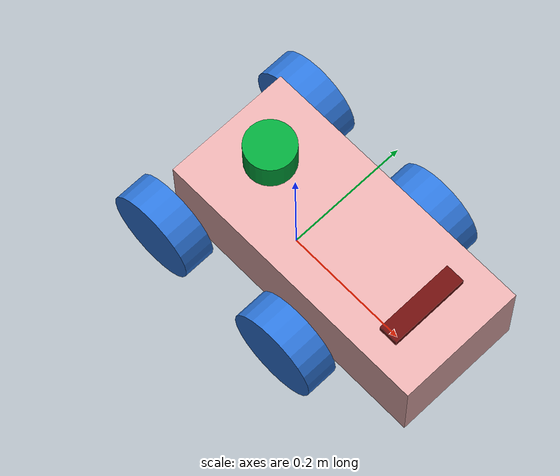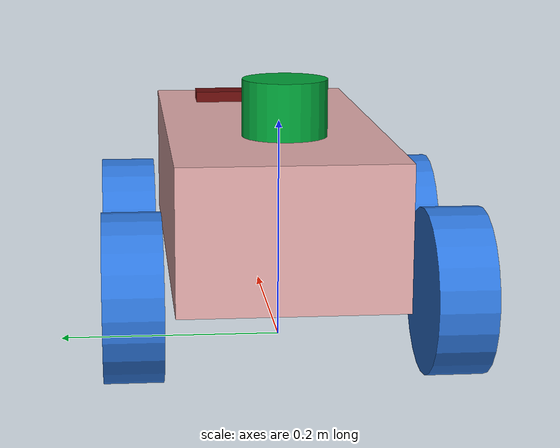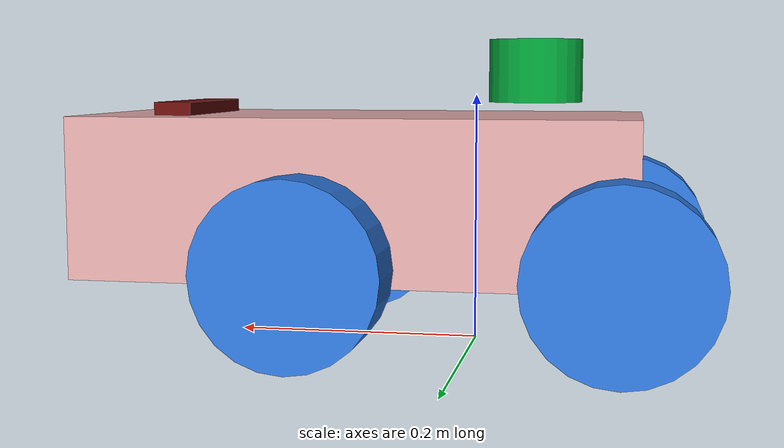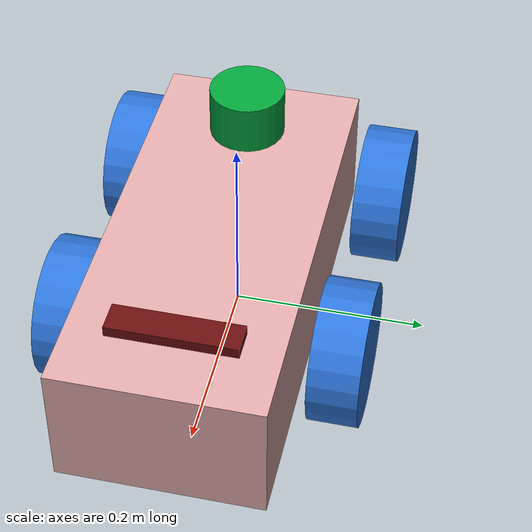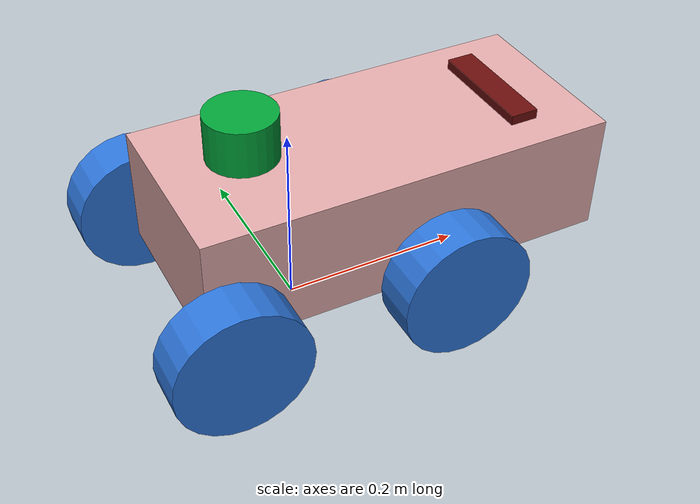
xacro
<?xml version="1.0"?>
<robot name="linorobot2_mecanum" xmlns:xacro="http://ros.org/wiki/xacro">
  <xacro:arg name="namespace" default="" />
  <xacro:include filename="$(find linorobot2_description)/urdf/mecanum_properties.urdf.xacro" />
  <xacro:include filename="$(find linorobot2_description)/urdf/mech/base.urdf.xacro" />
  <xacro:include filename="$(find linorobot2_description)/urdf/mech/mecanum_wheel.urdf.xacro" />
  <xacro:include filename="$(find linorobot2_description)/urdf/sensors/imu.urdf.xacro" />
  <xacro:include filename="$(find linorobot2_description)/urdf/sensors/generic_laser.urdf.xacro" />
  <xacro:include filename="$(find linorobot2_description)/urdf/sensors/depth_sensor.urdf.xacro" />
  <xacro:include filename="$(find linorobot2_description)/urdf/controllers/omni_drive.urdf.xacro" />

  <xacro:base
    length="${base_length}"
    width="${base_width}"
    height="${base_height}"
    mass="${base_mass}"
    wheel_radius="${wheel_radius}"
    wheel_pos_z="${wheel_pos_z}"
    mesh_file="${base_mesh_file}"
  />

  <xacro:mecanum_wheel
    side="front_left"
    radius="${wheel_radius}"
    width="${wheel_width}"
    pos_x="${wheel_pos_x}"
    pos_y="${wheel_pos_y}"
    pos_z="${wheel_pos_z}"
    mass="${wheel_mass}"
    mesh_file="${wheel_mesh_file}"
  />

  <xacro:mecanum_wheel
    side="front_right"
    radius="${wheel_radius}"
    width="${wheel_width}"
    pos_x="${wheel_pos_x}"
    pos_y="${-wheel_pos_y}"
    pos_z="${wheel_pos_z}"
    mass="${wheel_mass}"
    mesh_file="${wheel_mesh_file}"
  />
  <xacro:mecanum_wheel
    side="rear_left"
    radius="${wheel_radius}"
    width="${wheel_width}"
    pos_x="${-wheel_pos_x}"
    pos_y="${wheel_pos_y}"
    pos_z="${wheel_pos_z}"
    mass="${wheel_mass}"
    mesh_file="${wheel_mesh_file}"
  />

  <xacro:mecanum_wheel
    side="rear_right"
    radius="${wheel_radius}"
    width="${wheel_width}"
    pos_x="${-wheel_pos_x}"
    pos_y="${-wheel_pos_y}"
    pos_z="${wheel_pos_z}"
    mass="${wheel_mass}"
    mesh_file="${wheel_mesh_file}"
  />

  <xacro:imu/>

  <xacro:generic_laser>
    <xacro:insert_block name="laser_pose" />
  </xacro:generic_laser>

  <xacro:depth_sensor>
    <xacro:insert_block name="depth_sensor_pose" />
  </xacro:depth_sensor>

  <xacro:omni_drive_controller
    wheel_separation="${wheel_pos_y * 2}"
    wheel_base="${wheel_pos_x * 2}"
    wheel_radius="${wheel_radius}"
  />
</robot>

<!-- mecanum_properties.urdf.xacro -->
<robot xmlns:xacro="http://ros.org/wiki/xacro">
  <xacro:arg name="namespace" default="" />
  <xacro:property name="base_length" value="0.445" />
  <xacro:property name="base_width" value="0.200" />
  <xacro:property name="base_height" value="0.129" />
  <xacro:property name="base_mass" value="10" />
  <!-- set empty on the wheel_mesh_file to use geometry instead of mesh -->
  <xacro:property name="base_mesh_file" value="" />

  <xacro:property name="wheel_radius" value="0.07162" />
  <xacro:property name="wheel_width" value="0.05" />
  <xacro:property name="wheel_pos_x" value="0.120" />
  <xacro:property name="wheel_pos_y" value="0.1355" />
  <xacro:property name="wheel_pos_z" value="-0.04788" />
  <xacro:property name="wheel_mass" value=".6" />
  <xacro:property name="wheel_torque" value="20" />
  <!-- set empty on the wheel_mesh_file to use geometry instead of mesh -->
  <xacro:property name="wheel_mesh_file" value="" />

  <xacro:property name="laser_pose">
    <origin xyz="-0.0475 0 0.125" rpy="0 0 0"/>
  </xacro:property>

  <xacro:property name="depth_sensor_pose">
    <origin xyz="0.2375 0 0.06" rpy="0 0 0"/>
  </xacro:property>
</robot>

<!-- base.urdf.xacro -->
<robot xmlns:xacro="http://ros.org/wiki/xacro">
  <xacro:macro name="base" params="length width height mass wheel_radius wheel_pos_z mesh_file">
    <link name="base_footprint"/>

    <link name="base_link">
      <visual>
        <origin xyz="${(length/2) - 0.1327} 0 0" rpy="0 0 0"/>
        <geometry>
          <xacro:if value="${mesh_file == ''}">
            <box size="${length} ${width} ${height}"/>
          </xacro:if>
          <xacro:unless value="${mesh_file == ''}">
            <mesh filename="${mesh_file}" scale="1 1 1"/>
          </xacro:unless>
        </geometry>
        <material name="yellow">
          <color rgba="0.8784 0.6627 0.6627 1.0"/>
        </material>
      </visual>

      <collision>
        <origin xyz="${(length/2) - 0.0127} 0 0" rpy="0 0 0"/>
        <geometry>
          <box size="${length} ${width} ${height}"/>
        </geometry>
      </collision>

      <inertial>
        <origin xyz="0 0 0" rpy="0 0 0"/>
        <mass value="${mass}"/>
        <inertia ixx="${(1/12) * mass * ((width  * width)  + (height * height))}" ixy="0.0" ixz="0.0"
                 iyy="${(1/12) * mass * ((length * length) + (height * height))}" iyz="0.0"
                 izz="${(1/12) * mass * ((length * length) + (width  * width))}"/>
      </inertial>
    </link>

    <gazebo reference="base_link">
      <visual>
        <material>
          <ambient>0.8392 0.6314 0.0 1.0</ambient>
          <diffuse>0.8392 0.6314 0.0 1.0</diffuse>
          <specular>0.99 0.99 0.99 1.0</specular>
          <emissive>0.0 0.0 0.0 0.0</emissive>
        </material>
      </visual>
    </gazebo>

    <joint name="base_to_footprint" type="fixed">
      <parent link="base_footprint"/>
      <child link="base_link"/>
      <origin xyz="0 0 ${wheel_radius - wheel_pos_z}" rpy="0 0 0"/>
    </joint>
  </xacro:macro>
</robot>

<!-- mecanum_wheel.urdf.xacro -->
<robot xmlns:xacro="http://ros.org/wiki/xacro" xmlns:gz="http://gazebosim.org/schema">
  <xacro:macro name="mecanum_wheel" params="side radius width pos_x pos_y pos_z mass mesh_file">
    <link name="${side}_wheel_link">
      <visual>
        <origin xyz="0 0 0" rpy="${pi/2} 0 0"/>
        <geometry>
          <xacro:if value="${mesh_file == ''}">
            <cylinder radius="${radius}" length="${width}"/>
          </xacro:if>
          <xacro:unless value="${mesh_file == ''}">
            <mesh filename="${mesh_file}" scale="1 1 1"/>
          </xacro:unless>
        </geometry>
        <material name="blue">
            <color rgba="0.1764 0.4588 0.8509 1.0"/>
        </material>
      </visual>
      <collision>
        <origin xyz="0 0 0" rpy="${pi/2} 0 0"/>
        <geometry>
          <cylinder radius="${radius}" length="${width}"/>
        </geometry>
      </collision>

      <inertial>
        <origin xyz="0 0 0" rpy="0 0 0"/>
        <mass value="${mass}"/>
        <inertia ixx="${(2/5) * mass * (radius * radius)}" ixy="0" ixz="0"
                 iyy="${(2/5) * mass * (radius * radius)}" iyz="0"
                 izz="${(2/5) * mass * (radius * radius)}" />
      </inertial>
    </link>

    <gazebo reference="${side}_wheel_link">
      <collision>
        <surface>
          <friction>
            <ode>
              <mu>1.5</mu>
              <mu2>0.7</mu2>
              <kp>200000.0</kp>
              <kd>5000.0</kd>
              <xacro:if value="${side == 'front_left'}">
                <fdir1 gz:expressed_in="base_footprint">1 -1 0</fdir1>
              </xacro:if>
              <xacro:if value="${side == 'rear_left'}">
                <fdir1 gz:expressed_in="base_footprint">1 1 0</fdir1>
              </xacro:if>
              <xacro:if value="${side == 'front_right'}">
                <fdir1 gz:expressed_in="base_footprint">1 1 0</fdir1>
              </xacro:if>
              <xacro:if value="${side == 'rear_right'}">
                <fdir1 gz:expressed_in="base_footprint">1 -1 0</fdir1>
              </xacro:if>
            </ode>
          </friction>
        </surface>
      </collision>
    </gazebo>

    <gazebo reference="${side}_wheel_link">
      <visual>
        <material>
          <ambient>0.1764 0.4588 0.8509 1.0</ambient>
          <diffuse>0.1764 0.4588 0.8509 1.0</diffuse>
          <specular>0.1764 0.4588 0.8509 1.0</specular>
          <emissive>0.0 0.0 0.0 0.0</emissive>
        </material>
      </visual>
    </gazebo>
    <joint name="${side}_wheel_joint" type="continuous">
      <axis xyz="0 1 0" />
      <parent link="base_link"/>
      <child link="${side}_wheel_link"/>
      <origin xyz="${pos_x} ${pos_y} ${pos_z}" rpy="0 0 0"/>
    </joint>
  </xacro:macro>
</robot>

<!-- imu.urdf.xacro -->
<robot xmlns:xacro="http://ros.org/wiki/xacro">
  <xacro:macro name="imu">
    <link name="imu_link"/>

    <joint name="imu_to_base_link" type="fixed">
      <parent link="base_link"/>
      <child link="imu_link"/>
      <origin xyz="0 0 0" rpy="0 0 0"/>
    </joint>

    <gazebo>
      <plugin filename="gz-sim-imu-system" name="gz::sim::systems::Imu">
      </plugin>
    </gazebo>

    <gazebo reference="imu_link">
      <sensor name="imu_sensor" type="imu">
        <topic>$(arg namespace)/imu/data</topic>
        <update_rate>50</update_rate>
        <always_on>true</always_on>
        <visualize>true</visualize>
      </sensor>
    </gazebo>
  </xacro:macro>
</robot>

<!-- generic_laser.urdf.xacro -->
<robot xmlns:xacro="http://ros.org/wiki/xacro">
  <xacro:include filename="$(find linorobot2_description)/urdf/sensors/laser.urdf.xacro" />

  <xacro:macro name="generic_laser" params="*origin">
    <xacro:laser
      update_rate="10"
      ray_count="360"
      min_angle="-3.1416"
      max_angle="3.1416"
      min_range="0.08"
      max_range="12.0"
      frame_id="laser"
      topic_name="/scan"
    >
      <xacro:insert_block name="origin" />
    </xacro:laser>
  </xacro:macro>

  <xacro:macro name="generic_base_laser" params="*origin">
    <xacro:laser
      update_rate="10"
      ray_count="360"
      min_angle="-3.1416"
      max_angle="3.1416"
      min_range="0.21"
      max_range="5.5"
      frame_id="base_laser"
      topic_name="base/scan"
    >
      <xacro:insert_block name="origin" />
    </xacro:laser>
  </xacro:macro>
</robot>

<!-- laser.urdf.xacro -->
<robot xmlns:xacro="http://ros.org/wiki/xacro">
  <xacro:property name="M_PI" value="3.1415926535897931" />
  <xacro:macro name="laser" params="*origin update_rate ray_count min_angle max_angle min_range max_range frame_id topic_name">
    <link name="${frame_id}">
      <visual>
        <origin xyz="0 0 -0.025" rpy="0 0 0"/>
        <geometry>
          <cylinder radius="0.0375" length="0.05"/>
        </geometry>
        <material name="green">
            <color rgba="0.003 0.639 0.223 1.0"/>
        </material>
      </visual>
      <collision>
        <origin xyz="0 0 -0.025" rpy="0 0 0"/>
        <geometry>
          <cylinder radius="0.0375" length="0.05"/>
        </geometry>
      </collision>

      <inertial>
        <origin xyz="0 0 0" rpy="0 0 0"/>
        <mass value="0.1"/>
        <inertia ixx="${(2/5) * 0.1 * (0.0375 * 0.0375)}" ixy="0" ixz="0"
                 iyy="${(2/5) * 0.1 * (0.0375 * 0.0375)}" iyz="0"
                 izz="${(2/5) * 0.1 * (0.0375 * 0.0375)}" />
      </inertial>
    </link>

    <gazebo reference="${frame_id}">
      <visual>
        <material>
          <ambient>0.003 0.639 0.223 1.0</ambient>
          <diffuse>0.003 0.639 0.223 1.0</diffuse>
          <specular>0.003 0.639 0.223 1.0</specular>
          <emissive>0.0 0.0 0.0 0.0</emissive>
        </material>
      </visual>
    </gazebo>

    <joint name="${frame_id}_to_base_link" type="fixed">
      <parent link="base_link"/>
      <child link="${frame_id}"/>
      <xacro:insert_block name="origin" />
    </joint>

    <gazebo reference="${frame_id}">
      <sensor name="gpu_lidar" type="gpu_lidar">
        <topic>$(arg namespace)${topic_name}</topic>
        <gz_frame_id>${frame_id}</gz_frame_id>
        <update_rate>${update_rate}</update_rate>
        <always_on>true</always_on>
        <visualize>true</visualize>
        <lidar>
          <scan>
            <horizontal>
              <samples>${ray_count}</samples>
              <resolution>1</resolution>
              <min_angle>${min_angle}</min_angle>
              <max_angle>${max_angle}</max_angle>
            </horizontal>
            <vertical>
              <samples>1</samples>
              <resolution>1</resolution>
              <min_angle>0.0</min_angle>
              <max_angle>0.0</max_angle>
            </vertical>
          </scan>
          <range>
            <min>${min_range}</min>
            <max>${max_range}</max>
            <resolution>0.01</resolution>
          </range>
        </lidar>
      </sensor>
    </gazebo>
  </xacro:macro>
</robot>

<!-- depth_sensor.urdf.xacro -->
<robot xmlns:xacro="http://ros.org/wiki/xacro">
  <xacro:property name="M_PI" value="3.1415926535897931" />
  <xacro:macro name="depth_sensor" params="*origin">
    <link name="camera_link">
      <visual>
        <origin xyz="0 0 0" rpy="0 0 0"/>
        <geometry>
          <box size="0.030 0.124 0.030"/>
        </geometry>
        <material name="red">
          <color rgba="0.416 0.051 0.047 1.0"/>
        </material>
      </visual>

      <collision>
        <origin xyz="0 0 0" rpy="0 0 0"/>
        <geometry>
          <box size="0.030 0.124 0.030"/>
        </geometry>
      </collision>

      <inertial>
        <origin xyz="0 0 0" rpy="0 0 0"/>
        <mass value="0.135"/>
        <inertia ixx="${(1/12) * 0.135 * ((0.124  * 0.124)  + (0.030 * 0.030))}" ixy="0.0" ixz="0.0"
                 iyy="${(1/12) * 0.135 * ((0.030 * 0.030) + (0.030 * 0.030))}" iyz="0.0"
                 izz="${(1/12) * 0.135 * ((0.030 * 0.030) + (0.124  * 0.124))}"/>
      </inertial>
    </link>

    <gazebo reference="camera_link">
      <visual>
        <material>
          <ambient>0.416 0.051 0.047 1.0</ambient>
          <diffuse>0.416 0.051 0.047 1.0</diffuse>
          <specular>0.416 0.051 0.047 1.0</specular>
          <emissive>0.416 0.051 0.047 1.0</emissive>
        </material>
      </visual>
    </gazebo>rgb(213,28,40)

    <joint name="camera_to_base_link" type="fixed">
      <parent link="base_link"/>
      <child link="camera_link"/>
      <xacro:insert_block name="origin" />
    </joint>

    <link name="camera_depth_link"/>
    <joint name="camera_depth_joint" type="fixed">
      <origin xyz="0 0 0" rpy="0 0 0"/>
      <parent link="camera_link"/>
      <child link="camera_depth_link"/>
    </joint>

    <gazebo reference="camera_link">
      <sensor name="camera" type="rgbd_camera">
        <topic>$(arg namespace)/camera</topic>
        <update_rate>30.0</update_rate>
        <always_on>true</always_on>
        <visualize>true</visualize>
        <camera>
          <optical_frame_id>camera_depth_link</optical_frame_id>
          <horizontal_fov>1.50098</horizontal_fov>
          <image>
            <width>640</width>
            <height>480</height>
            <format>R8G8B8</format>
          </image>
          <clip>
            <near>0.3</near>
            <far>100</far>
          </clip>
        </camera>
      </sensor>
    </gazebo>
  </xacro:macro>
</robot>
